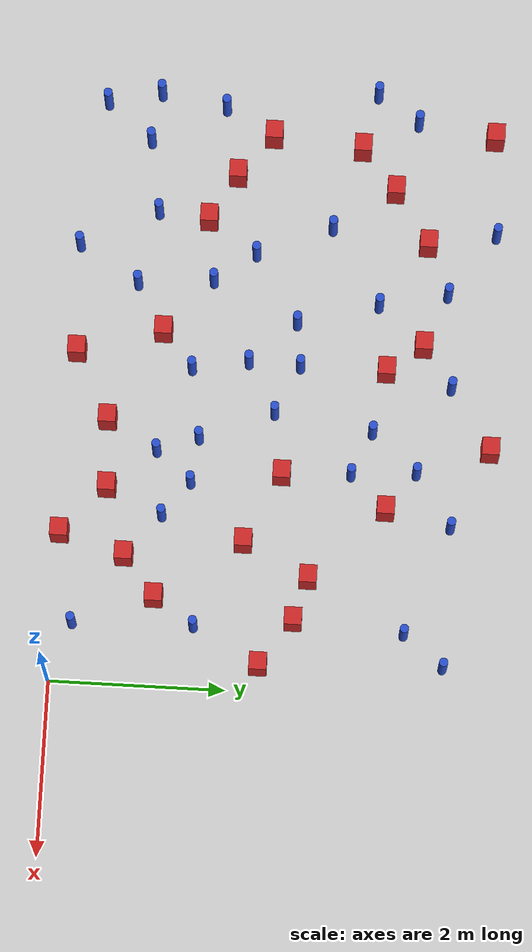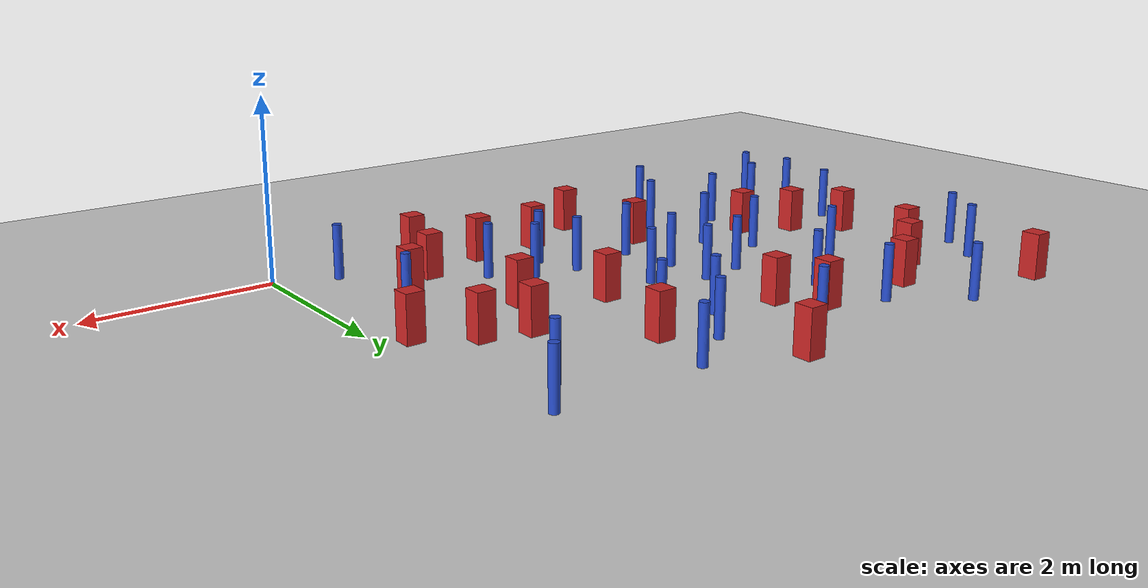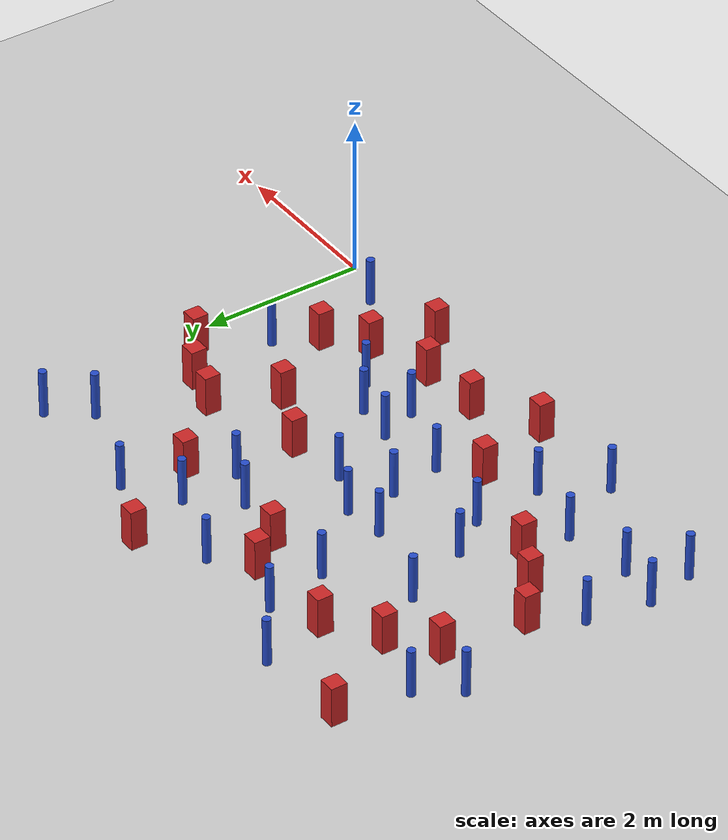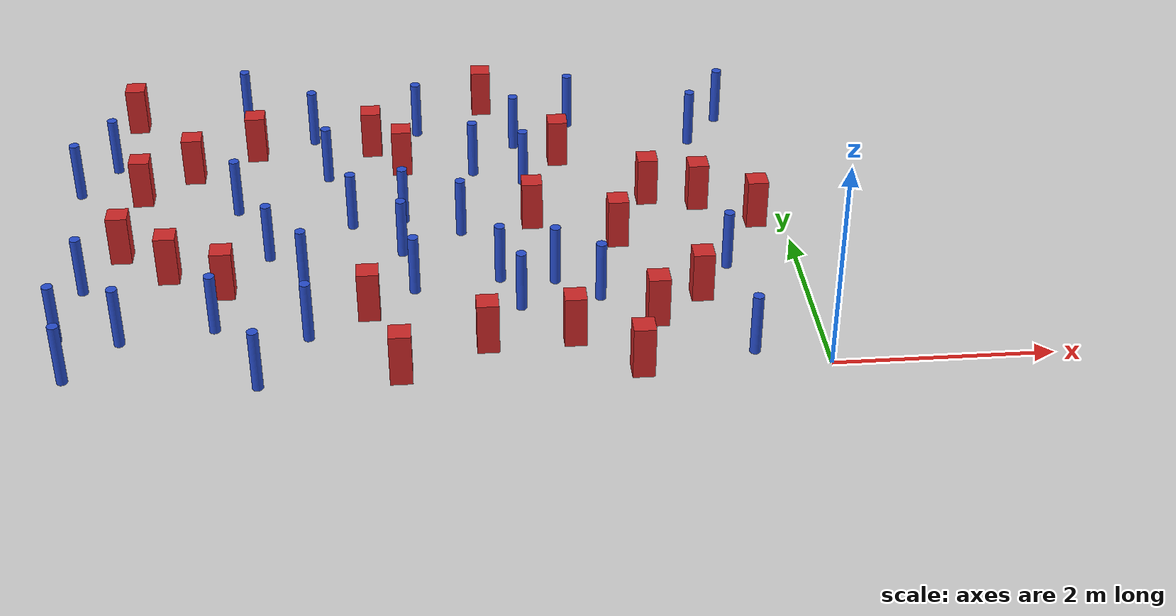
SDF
<sdf version="1.6">
 <world name="default">
  <model name="ground_plane">
   <static>1</static>
   <link name="link">
    <collision name="collision">
     <geometry><plane><normal>0 0 1</normal><size>100 100</size></plane></geometry>
     <surface><friction><ode><mu>100</mu><mu2>50</mu2></ode></friction></surface>
    </collision>
    <visual name="visual">
     <cast_shadows>0</cast_shadows>
     <geometry><plane><normal>0 0 1</normal><size>100 100</size></plane></geometry>
     <material>
      <ambient>1.0 1.0 1.0 1.0</ambient>
      <diffuse>0.8 0.8 0.8 1.0</diffuse>
      <specular>0.01 0.01 0.01 1.000000</specular>
     </material>
    </visual>
   </link>
  </model>
  <model name="square_post_obstacle1">
   <static>true</static>
   <pose>-2.88385890678 4.84033319816 -6.11067671241e-07 -5.50515727128e-06 -8.79689657224e-07 2.37013304536e-05</pose>
   <link name="link">
    <pose>0 0 0.25 0 -0 0</pose>
    <inertial>
     <mass>100</mass>
     <inertia>
      <ixx>0.166667</ixx>
      <ixy>0</ixy>
      <ixz>0</ixz>
      <iyy>0.166667</iyy>
      <iyz>0</iyz>
      <izz>0.166667</izz>
     </inertia>
    </inertial>
    <collision name="collision"><geometry><box><size>.2 .2 .5</size></box></geometry></collision>
    <visual name="visual">
     <geometry><box><size>.2 .2 .5</size></box></geometry>
     <material>
      <script><name>Gazebo/Red</name><uri>file://media/materials/scripts/gazebo.material</uri></script>
     </material>
    </visual>
   </link>
  </model>
  <model name="pole_obstacle4">
   <static>true</static>
   <pose>-0.367994864278 4.42728970482 -9.47619616065e-06 5.49618799737e-07 2.36310414065e-07 -1.55090534796e-07</pose>
   <link name="link">
    <pose>0 0 0.3 0 -0 0</pose>
    <inertial>
     <mass>1</mass>
     <inertia><ixx>0.145833</ixx><ixy>0</ixy><ixz>0</ixz><iyy>0.145833</iyy><iyz>0</iyz><izz>0.125</izz></inertia>
    </inertial>
    <collision name="collision">
     <geometry><cylinder><radius>0.05</radius><length>.6</length></cylinder></geometry>
    </collision>
    <visual name="visual">
     <geometry><cylinder><radius>0.05</radius><length>.6</length></cylinder></geometry>
     <material>
      <script><name>Gazebo/Blue</name><uri>file://media/materials/scripts/gazebo.material</uri></script>
     </material>
    </visual>
   </link>
  </model>
  <model name="pole_obstacle10">
   <static>true</static>
   <pose>-3.58671342312 4.36858105361 -9.47619616065e-06 5.49618799738e-07 2.3631041406e-07 -1.55090534801e-07</pose>
   <link name="link">
    <pose>0 0 0.3 0 -0 0</pose>
    <inertial>
     <mass>1</mass>
     <inertia><ixx>0.145833</ixx><ixy>0</ixy><ixz>0</ixz><iyy>0.145833</iyy><iyz>0</iyz><izz>0.125</izz></inertia>
    </inertial>
    <collision name="collision">
     <geometry><cylinder><radius>0.05</radius><length>.6</length></cylinder></geometry>
    </collision>
    <visual name="visual">
     <geometry><cylinder><radius>0.05</radius><length>.6</length></cylinder></geometry>
     <material>
      <script><name>Gazebo/Blue</name><uri>file://media/materials/scripts/gazebo.material</uri></script>
     </material>
    </visual>
   </link>
  </model>
  <model name="pole_obstacle12">
   <static>true</static>
   <pose>-2.85050988075 1.53689811707 -9.47619616065e-06 5.49618799737e-07 2.36310414072e-07 -1.55090534793e-07</pose>
   <link name="link">
    <pose>0 0 0.3 0 -0 0</pose>
    <inertial>
     <mass>1</mass>
     <inertia><ixx>0.145833</ixx><ixy>0</ixy><ixz>0</ixz><iyy>0.145833</iyy><iyz>0</iyz><izz>0.125</izz></inertia>
    </inertial>
    <collision name="collision">
     <geometry><cylinder><radius>0.05</radius><length>.6</length></cylinder></geometry>
    </collision>
    <visual name="visual">
     <geometry><cylinder><radius>0.05</radius><length>.6</length></cylinder></geometry>
     <material>
      <script><name>Gazebo/Blue</name><uri>file://media/materials/scripts/gazebo.material</uri></script>
     </material>
    </visual>
   </link>
  </model>
  <model name="square_post_obstacle8">
   <static>true</static>
   <pose>-0.286140557793 2.35264386809 -6.11067671241e-07 -5.50515727128e-06 -8.79689657224e-07 2.37013304536e-05</pose>
   <link name="link">
    <pose>0 0 0.25 0 -0 0</pose>
    <inertial>
     <mass>100</mass>
     <inertia>
      <ixx>0.166667</ixx>
      <ixy>0</ixy>
      <ixz>0</ixz>
      <iyy>0.166667</iyy>
      <iyz>0</iyz>
      <izz>0.166667</izz>
     </inertia>
    </inertial>
    <collision name="collision"><geometry><box><size>.2 .2 .5</size></box></geometry></collision>
    <visual name="visual">
     <geometry><box><size>.2 .2 .5</size></box></geometry>
     <material>
      <script><name>Gazebo/Red</name><uri>file://media/materials/scripts/gazebo.material</uri></script>
     </material>
    </visual>
   </link>
  </model>
  <model name="pole_obstacle16">
   <static>true</static>
   <pose>-3.02337573599 3.49883949913 -9.47619616065e-06 5.49618799737e-07 2.36310414051e-07 -1.55090534807e-07</pose>
   <link name="link">
    <pose>0 0 0.3 0 -0 0</pose>
    <inertial>
     <mass>1</mass>
     <inertia><ixx>0.145833</ixx><ixy>0</ixy><ixz>0</ixz><iyy>0.145833</iyy><iyz>0</iyz><izz>0.125</izz></inertia>
    </inertial>
    <collision name="collision">
     <geometry><cylinder><radius>0.05</radius><length>.6</length></cylinder></geometry>
    </collision>
    <visual name="visual">
     <geometry><cylinder><radius>0.05</radius><length>.6</length></cylinder></geometry>
     <material>
      <script><name>Gazebo/Blue</name><uri>file://media/materials/scripts/gazebo.material</uri></script>
     </material>
    </visual>
   </link>
  </model>
  <model name="pole_obstacle20">
   <static>true</static>
   <pose>-1.97383670014 4.43609214041 -9.47619616065e-06 5.49618799737e-07 2.36310414064e-07 -1.55090534797e-07</pose>
   <link name="link">
    <pose>0 0 0.3 0 -0 0</pose>
    <inertial>
     <mass>1</mass>
     <inertia><ixx>0.145833</ixx><ixy>0</ixy><ixz>0</ixz><iyy>0.145833</iyy><iyz>0</iyz><izz>0.125</izz></inertia>
    </inertial>
    <collision name="collision">
     <geometry><cylinder><radius>0.05</radius><length>.6</length></cylinder></geometry>
    </collision>
    <visual name="visual">
     <geometry><cylinder><radius>0.05</radius><length>.6</length></cylinder></geometry>
     <material>
      <script><name>Gazebo/Blue</name><uri>file://media/materials/scripts/gazebo.material</uri></script>
     </material>
    </visual>
   </link>
  </model>
  <model name="square_post_obstacle20">
   <static>true</static>
   <pose>-1.68341403801 0.027712718093 -6.11067671241e-07 -5.50515727128e-06 -8.79689657224e-07 2.37013304536e-05</pose>
   <link name="link">
    <pose>0 0 0.25 0 -0 0</pose>
    <inertial>
     <mass>100</mass>
     <inertia>
      <ixx>0.166667</ixx>
      <ixy>0</ixy>
      <ixz>0</ixz>
      <iyy>0.166667</iyy>
      <iyz>0</iyz>
      <izz>0.166667</izz>
     </inertia>
    </inertial>
    <collision name="collision"><geometry><box><size>.2 .2 .5</size></box></geometry></collision>
    <visual name="visual">
     <geometry><box><size>.2 .2 .5</size></box></geometry>
     <material>
      <script><name>Gazebo/Red</name><uri>file://media/materials/scripts/gazebo.material</uri></script>
     </material>
    </visual>
   </link>
  </model>
  <model name="square_post_obstacle21">
   <static>true</static>
   <pose>-1.68217082081 2.10644406995 -6.11067671241e-07 -5.50515727128e-06 -8.79689657224e-07 2.37013304536e-05</pose>
   <link name="link">
    <pose>0 0 0.25 0 -0 0</pose>
    <inertial>
     <mass>100</mass>
     <inertia>
      <ixx>0.166667</ixx>
      <ixy>0</ixy>
      <ixz>0</ixz>
      <iyy>0.166667</iyy>
      <iyz>0</iyz>
      <izz>0.166667</izz>
     </inertia>
    </inertial>
    <collision name="collision"><geometry><box><size>.2 .2 .5</size></box></geometry></collision>
    <visual name="visual">
     <geometry><box><size>.2 .2 .5</size></box></geometry>
     <material>
      <script><name>Gazebo/Red</name><uri>file://media/materials/scripts/gazebo.material</uri></script>
     </material>
    </visual>
   </link>
  </model>
  <model name="square_post_obstacle26">
   <static>true</static>
   <pose>-3.01715931005 0.487944426179 -6.11067671241e-07 -5.50515727128e-06 -8.79689657224e-07 2.37013304536e-05</pose>
   <link name="link">
    <pose>0 0 0.25 0 -0 0</pose>
    <inertial>
     <mass>100</mass>
     <inertia>
      <ixx>0.166667</ixx>
      <ixy>0</ixy>
      <ixz>0</ixz>
      <iyy>0.166667</iyy>
      <iyz>0</iyz>
      <izz>0.166667</izz>
     </inertia>
    </inertial>
    <collision name="collision"><geometry><box><size>.2 .2 .5</size></box></geometry></collision>
    <visual name="visual">
     <geometry><box><size>.2 .2 .5</size></box></geometry>
     <material>
      <script><name>Gazebo/Red</name><uri>file://media/materials/scripts/gazebo.material</uri></script>
     </material>
    </visual>
   </link>
  </model>
  <model name="pole_obstacle34">
   <static>true</static>
   <pose>-6.3060143701 0.784638575493 -9.47619616065e-06 5.49618799737e-07 2.36310414061e-07 -1.550905348e-07</pose>
   <link name="link">
    <pose>0 0 0.3 0 -0 0</pose>
    <inertial>
     <mass>1</mass>
     <inertia><ixx>0.145833</ixx><ixy>0</ixy><ixz>0</ixz><iyy>0.145833</iyy><iyz>0</iyz><izz>0.125</izz></inertia>
    </inertial>
    <collision name="collision">
     <geometry><cylinder><radius>0.05</radius><length>.6</length></cylinder></geometry>
    </collision>
    <visual name="visual">
     <geometry><cylinder><radius>0.05</radius><length>.6</length></cylinder></geometry>
     <material>
      <script><name>Gazebo/Blue</name><uri>file://media/materials/scripts/gazebo.material</uri></script>
     </material>
    </visual>
   </link>
  </model>
  <model name="pole_obstacle38">
   <static>true</static>
   <pose>-0.652024136691 0.229698904923 -9.47619616065e-06 5.49618799737e-07 2.36310414064e-07 -1.55090534797e-07</pose>
   <link name="link">
    <pose>0 0 0.3 0 -0 0</pose>
    <inertial>
     <mass>1</mass>
     <inertia><ixx>0.145833</ixx><ixy>0</ixy><ixz>0</ixz><iyy>0.145833</iyy><iyz>0</iyz><izz>0.125</izz></inertia>
    </inertial>
    <collision name="collision">
     <geometry><cylinder><radius>0.05</radius><length>.6</length></cylinder></geometry>
    </collision>
    <visual name="visual">
     <geometry><cylinder><radius>0.05</radius><length>.6</length></cylinder></geometry>
     <material>
      <script><name>Gazebo/Blue</name><uri>file://media/materials/scripts/gazebo.material</uri></script>
     </material>
    </visual>
   </link>
  </model>
  <model name="pole_obstacle47">
   <static>true</static>
   <pose>-4.6908072655 1.59676404725 -9.47619616065e-06 5.49618799738e-07 2.36310414071e-07 -1.55090534796e-07</pose>
   <link name="link">
    <pose>0 0 0.3 0 -0 0</pose>
    <inertial>
     <mass>1</mass>
     <inertia><ixx>0.145833</ixx><ixy>0</ixy><ixz>0</ixz><iyy>0.145833</iyy><iyz>0</iyz><izz>0.125</izz></inertia>
    </inertial>
    <collision name="collision">
     <geometry><cylinder><radius>0.05</radius><length>.6</length></cylinder></geometry>
    </collision>
    <visual name="visual">
     <geometry><cylinder><radius>0.05</radius><length>.6</length></cylinder></geometry>
     <material>
      <script><name>Gazebo/Blue</name><uri>file://media/materials/scripts/gazebo.material</uri></script>
     </material>
    </visual>
   </link>
  </model>
  <model name="pole_obstacle57">
   <static>true</static>
   <pose>-5.03291004681 2.06629025646 -9.47619616065e-06 5.49618799738e-07 2.36310414051e-07 -1.55090534805e-07</pose>
   <link name="link">
    <pose>0 0 0.3 0 -0 0</pose>
    <inertial>
     <mass>1</mass>
     <inertia><ixx>0.145833</ixx><ixy>0</ixy><ixz>0</ixz><iyy>0.145833</iyy><iyz>0</iyz><izz>0.125</izz></inertia>
    </inertial>
    <collision name="collision">
     <geometry><cylinder><radius>0.05</radius><length>.6</length></cylinder></geometry>
    </collision>
    <visual name="visual">
     <geometry><cylinder><radius>0.05</radius><length>.6</length></cylinder></geometry>
     <material>
      <script><name>Gazebo/Blue</name><uri>file://media/materials/scripts/gazebo.material</uri></script>
     </material>
    </visual>
   </link>
  </model>
  <model name="pole_obstacle58">
   <static>true</static>
   <pose>-4.50590614079 3.49682011623 -9.47619616065e-06 5.49618799738e-07 2.36310414051e-07 -1.55090534805e-07</pose>
   <link name="link">
    <pose>0 0 0.3 0 -0 0</pose>
    <inertial>
     <mass>1</mass>
     <inertia><ixx>0.145833</ixx><ixy>0</ixy><ixz>0</ixz><iyy>0.145833</iyy><iyz>0</iyz><izz>0.125</izz></inertia>
    </inertial>
    <collision name="collision">
     <geometry><cylinder><radius>0.05</radius><length>.6</length></cylinder></geometry>
    </collision>
    <visual name="visual">
     <geometry><cylinder><radius>0.05</radius><length>.6</length></cylinder></geometry>
     <material>
      <script><name>Gazebo/Blue</name><uri>file://media/materials/scripts/gazebo.material</uri></script>
     </material>
    </visual>
   </link>
  </model>
  <model name="pole_obstacle62">
   <static>true</static>
   <pose>-3.74406409634 2.6400258524 -9.47619616065e-06 5.49618799737e-07 2.36310414051e-07 -1.55090534807e-07</pose>
   <link name="link">
    <pose>0 0 0.3 0 -0 0</pose>
    <inertial>
     <mass>1</mass>
     <inertia><ixx>0.145833</ixx><ixy>0</ixy><ixz>0</ixz><iyy>0.145833</iyy><iyz>0</iyz><izz>0.125</izz></inertia>
    </inertial>
    <collision name="collision">
     <geometry><cylinder><radius>0.05</radius><length>.6</length></cylinder></geometry>
    </collision>
    <visual name="visual">
     <geometry><cylinder><radius>0.05</radius><length>.6</length></cylinder></geometry>
     <material>
      <script><name>Gazebo/Blue</name><uri>file://media/materials/scripts/gazebo.material</uri></script>
     </material>
    </visual>
   </link>
  </model>
  <model name="square_post_obstacle49">
   <static>true</static>
   <pose>-6.34716784516 3.21399703537 -6.11067671241e-07 -5.50515727128e-06 -8.79689657224e-07 2.37013304536e-05</pose>
   <link name="link">
    <pose>0 0 0.25 0 -0 0</pose>
    <inertial>
     <mass>100</mass>
     <inertia>
      <ixx>0.166667</ixx>
      <ixy>0</ixy>
      <ixz>0</ixz>
      <iyy>0.166667</iyy>
      <iyz>0</iyz>
      <izz>0.166667</izz>
     </inertia>
    </inertial>
    <collision name="collision"><geometry><box><size>.2 .2 .5</size></box></geometry></collision>
    <visual name="visual">
     <geometry><box><size>.2 .2 .5</size></box></geometry>
     <material>
      <script><name>Gazebo/Red</name><uri>file://media/materials/scripts/gazebo.material</uri></script>
     </material>
    </visual>
   </link>
  </model>
  <model name="pole_obstacle63">
   <static>true</static>
   <pose>-6.74240581567 1.62577142792 -9.47619616065e-06 5.49618799738e-07 2.36310414071e-07 -1.55090534796e-07</pose>
   <link name="link">
    <pose>0 0 0.3 0 -0 0</pose>
    <inertial>
     <mass>1</mass>
     <inertia><ixx>0.145833</ixx><ixy>0</ixy><ixz>0</ixz><iyy>0.145833</iyy><iyz>0</iyz><izz>0.125</izz></inertia>
    </inertial>
    <collision name="collision">
     <geometry><cylinder><radius>0.05</radius><length>.6</length></cylinder></geometry>
    </collision>
    <visual name="visual">
     <geometry><cylinder><radius>0.05</radius><length>.6</length></cylinder></geometry>
     <material>
      <script><name>Gazebo/Blue</name><uri>file://media/materials/scripts/gazebo.material</uri></script>
     </material>
    </visual>
   </link>
  </model>
  <model name="pole_obstacle64">
   <static>true</static>
   <pose>-2.52203149085 3.28133930335 -9.47619616065e-06 5.49618799737e-07 2.36310414051e-07 -1.55090534807e-07</pose>
   <link name="link">
    <pose>0 0 0.3 0 -0 0</pose>
    <inertial>
     <mass>1</mass>
     <inertia><ixx>0.145833</ixx><ixy>0</ixy><ixz>0</ixz><iyy>0.145833</iyy><iyz>0</iyz><izz>0.125</izz></inertia>
    </inertial>
    <collision name="collision">
     <geometry><cylinder><radius>0.05</radius><length>.6</length></cylinder></geometry>
    </collision>
    <visual name="visual">
     <geometry><cylinder><radius>0.05</radius><length>.6</length></cylinder></geometry>
     <material>
      <script><name>Gazebo/Blue</name><uri>file://media/materials/scripts/gazebo.material</uri></script>
     </material>
    </visual>
   </link>
  </model>
  <model name="square_post_obstacle59">
   <static>true</static>
   <pose>-5.2536640917 4.02046762901 -6.11067671241e-07 -5.50515727128e-06 -8.79689657224e-07 2.37013304536e-05</pose>
   <link name="link">
    <pose>0 0 0.25 0 -0 0</pose>
    <inertial>
     <mass>100</mass>
     <inertia>
      <ixx>0.166667</ixx>
      <ixy>0</ixy>
      <ixz>0</ixz>
      <iyy>0.166667</iyy>
      <iyz>0</iyz>
      <izz>0.166667</izz>
     </inertia>
    </inertial>
    <collision name="collision"><geometry><box><size>.2 .2 .5</size></box></geometry></collision>
    <visual name="visual">
     <geometry><box><size>.2 .2 .5</size></box></geometry>
     <material>
      <script><name>Gazebo/Red</name><uri>file://media/materials/scripts/gazebo.material</uri></script>
     </material>
    </visual>
   </link>
  </model>
  <model name="square_post_obstacle63">
   <static>true</static>
   <pose>-6.4423201926 2.18782174136 -6.11067671241e-07 -5.50515727128e-06 -8.79689657224e-07 2.37013304536e-05</pose>
   <link name="link">
    <pose>0 0 0.25 0 -0 0</pose>
    <inertial>
     <mass>100</mass>
     <inertia>
      <ixx>0.166667</ixx>
      <ixy>0</ixy>
      <ixz>0</ixz>
      <iyy>0.166667</iyy>
      <iyz>0</iyz>
      <izz>0.166667</izz>
     </inertia>
    </inertial>
    <collision name="collision"><geometry><box><size>.2 .2 .5</size></box></geometry></collision>
    <visual name="visual">
     <geometry><box><size>.2 .2 .5</size></box></geometry>
     <material>
      <script><name>Gazebo/Red</name><uri>file://media/materials/scripts/gazebo.material</uri></script>
     </material>
    </visual>
   </link>
  </model>
  <model name="pole_obstacle81">
   <static>true</static>
   <pose>-6.67856678362 3.84104070284 -9.47619616065e-06 5.49618799738e-07 2.36310414051e-07 -1.55090534805e-07</pose>
   <link name="link">
    <pose>0 0 0.3 0 -0 0</pose>
    <inertial>
     <mass>1</mass>
     <inertia><ixx>0.145833</ixx><ixy>0</ixy><ixz>0</ixz><iyy>0.145833</iyy><iyz>0</iyz><izz>0.125</izz></inertia>
    </inertial>
    <collision name="collision">
     <geometry><cylinder><radius>0.05</radius><length>.6</length></cylinder></geometry>
    </collision>
    <visual name="visual">
     <geometry><cylinder><radius>0.05</radius><length>.6</length></cylinder></geometry>
     <material>
      <script><name>Gazebo/Blue</name><uri>file://media/materials/scripts/gazebo.material</uri></script>
     </material>
    </visual>
   </link>
  </model>
  <model name="square_post_obstacle82">
   <static>true</static>
   <pose>-5.95767635334 1.80014717634 -6.11067671241e-07 -5.50515727128e-06 -8.79689657224e-07 2.37013304536e-05</pose>
   <link name="link">
    <pose>0 0 0.25 0 -0 0</pose>
    <inertial>
     <mass>100</mass>
     <inertia>
      <ixx>0.166667</ixx>
      <ixy>0</ixy>
      <ixz>0</ixz>
      <iyy>0.166667</iyy>
      <iyz>0</iyz>
      <izz>0.166667</izz>
     </inertia>
    </inertial>
    <collision name="collision"><geometry><box><size>.2 .2 .5</size></box></geometry></collision>
    <visual name="visual">
     <geometry><box><size>.2 .2 .5</size></box></geometry>
     <material>
      <script><name>Gazebo/Red</name><uri>file://media/materials/scripts/gazebo.material</uri></script>
     </material>
    </visual>
   </link>
  </model>
  <model name="pole_obstacle97">
   <static>true</static>
   <pose>-3.76232455672 2.05161000808 -9.47619616065e-06 5.49618799737e-07 2.36310414051e-07 -1.55090534807e-07</pose>
   <link name="link">
    <pose>0 0 0.3 0 -0 0</pose>
    <inertial>
     <mass>1</mass>
     <inertia><ixx>0.145833</ixx><ixy>0</ixy><ixz>0</ixz><iyy>0.145833</iyy><iyz>0</iyz><izz>0.125</izz></inertia>
    </inertial>
    <collision name="collision">
     <geometry><cylinder><radius>0.05</radius><length>.6</length></cylinder></geometry>
    </collision>
    <visual name="visual">
     <geometry><cylinder><radius>0.05</radius><length>.6</length></cylinder></geometry>
     <material>
      <script><name>Gazebo/Blue</name><uri>file://media/materials/scripts/gazebo.material</uri></script>
     </material>
    </visual>
   </link>
  </model>
  <model name="square_post_obstacle89">
   <static>true</static>
   <pose>-5.42043671603 1.50072297355 -6.11067671241e-07 -5.50515727128e-06 -8.79689657224e-07 2.37013304536e-05</pose>
   <link name="link">
    <pose>0 0 0.25 0 -0 0</pose>
    <inertial>
     <mass>100</mass>
     <inertia>
      <ixx>0.166667</ixx>
      <ixy>0</ixy>
      <ixz>0</ixz>
      <iyy>0.166667</iyy>
      <iyz>0</iyz>
      <izz>0.166667</izz>
     </inertia>
    </inertial>
    <collision name="collision"><geometry><box><size>.2 .2 .5</size></box></geometry></collision>
    <visual name="visual">
     <geometry><box><size>.2 .2 .5</size></box></geometry>
     <material>
      <script><name>Gazebo/Red</name><uri>file://media/materials/scripts/gazebo.material</uri></script>
     </material>
    </visual>
   </link>
  </model>
  <model name="square_post_obstacle93">
   <static>true</static>
   <pose>-0.816833278691 2.71796113942 -6.11067671241e-07 -5.50515727128e-06 -8.79689657224e-07 2.37013304536e-05</pose>
   <link name="link">
    <pose>0 0 0.25 0 -0 0</pose>
    <inertial>
     <mass>100</mass>
     <inertia>
      <ixx>0.166667</ixx>
      <ixy>0</ixy>
      <ixz>0</ixz>
      <iyy>0.166667</iyy>
      <iyz>0</iyz>
      <izz>0.166667</izz>
     </inertia>
    </inertial>
    <collision name="collision"><geometry><box><size>.2 .2 .5</size></box></geometry></collision>
    <visual name="visual">
     <geometry><box><size>.2 .2 .5</size></box></geometry>
     <material>
      <script><name>Gazebo/Red</name><uri>file://media/materials/scripts/gazebo.material</uri></script>
     </material>
    </visual>
   </link>
  </model>
  <model name="square_post_obstacle96">
   <static>true</static>
   <pose>-4.06165393853 4.02758912572 -6.11067671241e-07 -5.50515727128e-06 -8.79689657224e-07 2.37013304536e-05</pose>
   <link name="link">
    <pose>0 0 0.25 0 -0 0</pose>
    <inertial>
     <mass>100</mass>
     <inertia>
      <ixx>0.166667</ixx>
      <ixy>0</ixy>
      <ixz>0</ixz>
      <iyy>0.166667</iyy>
      <iyz>0</iyz>
      <izz>0.166667</izz>
     </inertia>
    </inertial>
    <collision name="collision"><geometry><box><size>.2 .2 .5</size></box></geometry></collision>
    <visual name="visual">
     <geometry><box><size>.2 .2 .5</size></box></geometry>
     <material>
      <script><name>Gazebo/Red</name><uri>file://media/materials/scripts/gazebo.material</uri></script>
     </material>
    </visual>
   </link>
  </model>
  <model name="pole_obstacle108">
   <static>true</static>
   <pose>-4.67070167482 4.27544593047 -9.47619616065e-06 5.49618799737e-07 2.36310414037e-07 -1.55090534814e-07</pose>
   <link name="link">
    <pose>0 0 0.3 0 -0 0</pose>
    <inertial>
     <mass>1</mass>
     <inertia><ixx>0.145833</ixx><ixy>0</ixy><ixz>0</ixz><iyy>0.145833</iyy><iyz>0</iyz><izz>0.125</izz></inertia>
    </inertial>
    <collision name="collision">
     <geometry><cylinder><radius>0.05</radius><length>.6</length></cylinder></geometry>
    </collision>
    <visual name="visual">
     <geometry><cylinder><radius>0.05</radius><length>.6</length></cylinder></geometry>
     <material>
      <script><name>Gazebo/Blue</name><uri>file://media/materials/scripts/gazebo.material</uri></script>
     </material>
    </visual>
   </link>
  </model>
  <model name="square_post_obstacle105">
   <static>true</static>
   <pose>-1.30841913835 2.85923927427 -6.11067671241e-07 -5.50515727128e-06 -8.79689657224e-07 2.37013304536e-05</pose>
   <link name="link">
    <pose>0 0 0.25 0 -0 0</pose>
    <inertial>
     <mass>100</mass>
     <inertia>
      <ixx>0.166667</ixx>
      <ixy>0</ixy>
      <ixz>0</ixz>
      <iyy>0.166667</iyy>
      <iyz>0</iyz>
      <izz>0.166667</izz>
     </inertia>
    </inertial>
    <collision name="collision"><geometry><box><size>.2 .2 .5</size></box></geometry></collision>
    <visual name="visual">
     <geometry><box><size>.2 .2 .5</size></box></geometry>
     <material>
      <script><name>Gazebo/Red</name><uri>file://media/materials/scripts/gazebo.material</uri></script>
     </material>
    </visual>
   </link>
  </model>
  <model name="pole_obstacle112">
   <static>true</static>
   <pose>-0.686637428402 1.59870085789 -9.47619616065e-06 5.49618799738e-07 2.36310414061e-07 -1.55090534801e-07</pose>
   <link name="link">
    <pose>0 0 0.3 0 -0 0</pose>
    <inertial>
     <mass>1</mass>
     <inertia><ixx>0.145833</ixx><ixy>0</ixy><ixz>0</ixz><iyy>0.145833</iyy><iyz>0</iyz><izz>0.125</izz></inertia>
    </inertial>
    <collision name="collision">
     <geometry><cylinder><radius>0.05</radius><length>.6</length></cylinder></geometry>
    </collision>
    <visual name="visual">
     <geometry><cylinder><radius>0.05</radius><length>.6</length></cylinder></geometry>
     <material>
      <script><name>Gazebo/Blue</name><uri>file://media/materials/scripts/gazebo.material</uri></script>
     </material>
    </visual>
   </link>
  </model>
  <model name="square_post_obstacle110">
   <static>true</static>
   <pose>-3.79338010489 0.090498949989 -6.11067671241e-07 -5.50515727128e-06 -8.79689657224e-07 2.37013304536e-05</pose>
   <link name="link">
    <pose>0 0 0.25 0 -0 0</pose>
    <inertial>
     <mass>100</mass>
     <inertia>
      <ixx>0.166667</ixx>
      <ixy>0</ixy>
      <ixz>0</ixz>
      <iyy>0.166667</iyy>
      <iyz>0</iyz>
      <izz>0.166667</izz>
     </inertia>
    </inertial>
    <collision name="collision"><geometry><box><size>.2 .2 .5</size></box></geometry></collision>
    <visual name="visual">
     <geometry><box><size>.2 .2 .5</size></box></geometry>
     <material>
      <script><name>Gazebo/Red</name><uri>file://media/materials/scripts/gazebo.material</uri></script>
     </material>
    </visual>
   </link>
  </model>
  <model name="pole_obstacle113">
   <static>true</static>
   <pose>-2.3345319469 1.47122484439 -9.47619616065e-06 5.49618799737e-07 2.36310414072e-07 -1.55090534793e-07</pose>
   <link name="link">
    <pose>0 0 0.3 0 -0 0</pose>
    <inertial>
     <mass>1</mass>
     <inertia><ixx>0.145833</ixx><ixy>0</ixy><ixz>0</ixz><iyy>0.145833</iyy><iyz>0</iyz><izz>0.125</izz></inertia>
    </inertial>
    <collision name="collision">
     <geometry><cylinder><radius>0.05</radius><length>.6</length></cylinder></geometry>
    </collision>
    <visual name="visual">
     <geometry><cylinder><radius>0.05</radius><length>.6</length></cylinder></geometry>
     <material>
      <script><name>Gazebo/Blue</name><uri>file://media/materials/scripts/gazebo.material</uri></script>
     </material>
    </visual>
   </link>
  </model>
  <model name="square_post_obstacle115">
   <static>true</static>
   <pose>-1.45688916484 0.769004276994 -6.11067671241e-07 -5.50515727128e-06 -8.79689657224e-07 2.37013304536e-05</pose>
   <link name="link">
    <pose>0 0 0.25 0 -0 0</pose>
    <inertial>
     <mass>100</mass>
     <inertia>
      <ixx>0.166667</ixx>
      <ixy>0</ixy>
      <ixz>0</ixz>
      <iyy>0.166667</iyy>
      <iyz>0</iyz>
      <izz>0.166667</izz>
     </inertia>
    </inertial>
    <collision name="collision"><geometry><box><size>.2 .2 .5</size></box></geometry></collision>
    <visual name="visual">
     <geometry><box><size>.2 .2 .5</size></box></geometry>
     <material>
      <script><name>Gazebo/Red</name><uri>file://media/materials/scripts/gazebo.material</uri></script>
     </material>
    </visual>
   </link>
  </model>
  <model name="square_post_obstacle121">
   <static>true</static>
   <pose>-6.55290964246 4.72502300175 -6.11067671241e-07 -5.50515727128e-06 -8.79689657224e-07 2.37013304536e-05</pose>
   <link name="link">
    <pose>0 0 0.25 0 -0 0</pose>
    <inertial>
     <mass>100</mass>
     <inertia>
      <ixx>0.166667</ixx>
      <ixy>0</ixy>
      <ixz>0</ixz>
      <iyy>0.166667</iyy>
      <iyz>0</iyz>
      <izz>0.166667</izz>
     </inertia>
    </inertial>
    <collision name="collision"><geometry><box><size>.2 .2 .5</size></box></geometry></collision>
    <visual name="visual">
     <geometry><box><size>.2 .2 .5</size></box></geometry>
     <material>
      <script><name>Gazebo/Red</name><uri>file://media/materials/scripts/gazebo.material</uri></script>
     </material>
    </visual>
   </link>
  </model>
  <model name="pole_obstacle123">
   <static>true</static>
   <pose>-0.724805556212 3.96947285813 -9.47619616065e-06 5.49618799737e-07 2.36310414065e-07 -1.55090534797e-07</pose>
   <link name="link">
    <pose>0 0 0.3 0 -0 0</pose>
    <inertial>
     <mass>1</mass>
     <inertia><ixx>0.145833</ixx><ixy>0</ixy><ixz>0</ixz><iyy>0.145833</iyy><iyz>0</iyz><izz>0.125</izz></inertia>
    </inertial>
    <collision name="collision">
     <geometry><cylinder><radius>0.05</radius><length>.6</length></cylinder></geometry>
    </collision>
    <visual name="visual">
     <geometry><cylinder><radius>0.05</radius><length>.6</length></cylinder></geometry>
     <material>
      <script><name>Gazebo/Blue</name><uri>file://media/materials/scripts/gazebo.material</uri></script>
     </material>
    </visual>
   </link>
  </model>
  <model name="pole_obstacle128">
   <static>true</static>
   <pose>-4.61771667288 0.734901825183 -9.47619616065e-06 5.49618799737e-07 2.36310414061e-07 -1.550905348e-07</pose>
   <link name="link">
    <pose>0 0 0.3 0 -0 0</pose>
    <inertial>
     <mass>1</mass>
     <inertia><ixx>0.145833</ixx><ixy>0</ixy><ixz>0</ixz><iyy>0.145833</iyy><iyz>0</iyz><izz>0.125</izz></inertia>
    </inertial>
    <collision name="collision">
     <geometry><cylinder><radius>0.05</radius><length>.6</length></cylinder></geometry>
    </collision>
    <visual name="visual">
     <geometry><cylinder><radius>0.05</radius><length>.6</length></cylinder></geometry>
     <material>
      <script><name>Gazebo/Blue</name><uri>file://media/materials/scripts/gazebo.material</uri></script>
     </material>
    </visual>
   </link>
  </model>
  <model name="pole_obstacle138">
   <static>true</static>
   <pose>-5.03437319114 0.0474424205242 -9.47619616065e-06 5.49618799738e-07 2.36310414073e-07 -1.55090534795e-07</pose>
   <link name="link">
    <pose>0 0 0.3 0 -0 0</pose>
    <inertial>
     <mass>1</mass>
     <inertia><ixx>0.145833</ixx><ixy>0</ixy><ixz>0</ixz><iyy>0.145833</iyy><iyz>0</iyz><izz>0.125</izz></inertia>
    </inertial>
    <collision name="collision">
     <geometry><cylinder><radius>0.05</radius><length>.6</length></cylinder></geometry>
    </collision>
    <visual name="visual">
     <geometry><cylinder><radius>0.05</radius><length>.6</length></cylinder></geometry>
     <material>
      <script><name>Gazebo/Blue</name><uri>file://media/materials/scripts/gazebo.material</uri></script>
     </material>
    </visual>
   </link>
  </model>
  <model name="pole_obstacle145">
   <static>true</static>
   <pose>-2.67924937792 1.06562294298 -9.47619616065e-06 5.49618799737e-07 2.36310414072e-07 -1.55090534793e-07</pose>
   <link name="link">
    <pose>0 0 0.3 0 -0 0</pose>
    <inertial>
     <mass>1</mass>
     <inertia><ixx>0.145833</ixx><ixy>0</ixy><ixz>0</ixz><iyy>0.145833</iyy><iyz>0</iyz><izz>0.125</izz></inertia>
    </inertial>
    <collision name="collision">
     <geometry><cylinder><radius>0.05</radius><length>.6</length></cylinder></geometry>
    </collision>
    <visual name="visual">
     <geometry><cylinder><radius>0.05</radius><length>.6</length></cylinder></geometry>
     <material>
      <script><name>Gazebo/Blue</name><uri>file://media/materials/scripts/gazebo.material</uri></script>
     </material>
    </visual>
   </link>
  </model>
  <model name="pole_obstacle157">
   <static>true</static>
   <pose>-4.24743596319 2.57576871604 -9.47619616065e-06 5.49618799738e-07 2.36310414051e-07 -1.55090534805e-07</pose>
   <link name="link">
    <pose>0 0 0.3 0 -0 0</pose>
    <inertial>
     <mass>1</mass>
     <inertia><ixx>0.145833</ixx><ixy>0</ixy><ixz>0</ixz><iyy>0.145833</iyy><iyz>0</iyz><izz>0.125</izz></inertia>
    </inertial>
    <collision name="collision">
     <geometry><cylinder><radius>0.05</radius><length>.6</length></cylinder></geometry>
    </collision>
    <visual name="visual">
     <geometry><cylinder><radius>0.05</radius><length>.6</length></cylinder></geometry>
     <material>
      <script><name>Gazebo/Blue</name><uri>file://media/materials/scripts/gazebo.material</uri></script>
     </material>
    </visual>
   </link>
  </model>
  <model name="square_post_obstacle169">
   <static>true</static>
   <pose>-4.07608495262 1.05862910519 -6.11067671241e-07 -5.50515727128e-06 -8.79689657224e-07 2.37013304536e-05</pose>
   <link name="link">
    <pose>0 0 0.25 0 -0 0</pose>
    <inertial>
     <mass>100</mass>
     <inertia>
      <ixx>0.166667</ixx>
      <ixy>0</ixy>
      <ixz>0</ixz>
      <iyy>0.166667</iyy>
      <iyz>0</iyz>
      <izz>0.166667</izz>
     </inertia>
    </inertial>
    <collision name="collision"><geometry><box><size>.2 .2 .5</size></box></geometry></collision>
    <visual name="visual">
     <geometry><box><size>.2 .2 .5</size></box></geometry>
     <material>
      <script><name>Gazebo/Red</name><uri>file://media/materials/scripts/gazebo.material</uri></script>
     </material>
    </visual>
   </link>
  </model>
  <model name="pole_obstacle173">
   <static>true</static>
   <pose>-3.65512611951 1.40897555652 -9.47619616065e-06 5.49618799737e-07 2.36310414072e-07 -1.55090534793e-07</pose>
   <link name="link">
    <pose>0 0 0.3 0 -0 0</pose>
    <inertial>
     <mass>1</mass>
     <inertia><ixx>0.145833</ixx><ixy>0</ixy><ixz>0</ixz><iyy>0.145833</iyy><iyz>0</iyz><izz>0.125</izz></inertia>
    </inertial>
    <collision name="collision">
     <geometry><cylinder><radius>0.05</radius><length>.6</length></cylinder></geometry>
    </collision>
    <visual name="visual">
     <geometry><cylinder><radius>0.05</radius><length>.6</length></cylinder></geometry>
     <material>
      <script><name>Gazebo/Blue</name><uri>file://media/materials/scripts/gazebo.material</uri></script>
     </material>
    </visual>
   </link>
  </model>
  <model name="pole_obstacle180">
   <static>true</static>
   <pose>-6.87664417184 0.872339363038 -9.47619616065e-06 5.49618799737e-07 2.36310414061e-07 -1.550905348e-07</pose>
   <link name="link">
    <pose>0 0 0.3 0 -0 0</pose>
    <inertial>
     <mass>1</mass>
     <inertia><ixx>0.145833</ixx><ixy>0</ixy><ixz>0</ixz><iyy>0.145833</iyy><iyz>0</iyz><izz>0.125</izz></inertia>
    </inertial>
    <collision name="collision">
     <geometry><cylinder><radius>0.05</radius><length>.6</length></cylinder></geometry>
    </collision>
    <visual name="visual">
     <geometry><cylinder><radius>0.05</radius><length>.6</length></cylinder></geometry>
     <material>
      <script><name>Gazebo/Blue</name><uri>file://media/materials/scripts/gazebo.material</uri></script>
     </material>
    </visual>
   </link>
  </model>
  <model name="square_post_obstacle180">
   <static>true</static>
   <pose>-2.1407020329 3.69200710717 -6.11067671241e-07 -5.50515727128e-06 -8.79689657224e-07 2.37013304536e-05</pose>
   <link name="link">
    <pose>0 0 0.25 0 -0 0</pose>
    <inertial>
     <mass>100</mass>
     <inertia>
      <ixx>0.166667</ixx>
      <ixy>0</ixy>
      <ixz>0</ixz>
      <iyy>0.166667</iyy>
      <iyz>0</iyz>
      <izz>0.166667</izz>
     </inertia>
    </inertial>
    <collision name="collision"><geometry><box><size>.2 .2 .5</size></box></geometry></collision>
    <visual name="visual">
     <geometry><box><size>.2 .2 .5</size></box></geometry>
     <material>
      <script><name>Gazebo/Red</name><uri>file://media/materials/scripts/gazebo.material</uri></script>
     </material>
    </visual>
   </link>
  </model>
  <model name="square_post_obstacle181">
   <static>true</static>
   <pose>-5.86733477037 3.61785094477 -6.11067671241e-07 -5.50515727128e-06 -8.79689657224e-07 2.37013304536e-05</pose>
   <link name="link">
    <pose>0 0 0.25 0 -0 0</pose>
    <inertial>
     <mass>100</mass>
     <inertia>
      <ixx>0.166667</ixx>
      <ixy>0</ixy>
      <ixz>0</ixz>
      <iyy>0.166667</iyy>
      <iyz>0</iyz>
      <izz>0.166667</izz>
     </inertia>
    </inertial>
    <collision name="collision"><geometry><box><size>.2 .2 .5</size></box></geometry></collision>
    <visual name="visual">
     <geometry><box><size>.2 .2 .5</size></box></geometry>
     <material>
      <script><name>Gazebo/Red</name><uri>file://media/materials/scripts/gazebo.material</uri></script>
     </material>
    </visual>
   </link>
  </model>
  <model name="pole_obstacle185">
   <static>true</static>
   <pose>-1.93677820441 1.16726307011 -9.47619616065e-06 5.49618799737e-07 2.36310414065e-07 -1.55090534798e-07</pose>
   <link name="link">
    <pose>0 0 0.3 0 -0 0</pose>
    <inertial>
     <mass>1</mass>
     <inertia><ixx>0.145833</ixx><ixy>0</ixy><ixz>0</ixz><iyy>0.145833</iyy><iyz>0</iyz><izz>0.125</izz></inertia>
    </inertial>
    <collision name="collision">
     <geometry><cylinder><radius>0.05</radius><length>.6</length></cylinder></geometry>
    </collision>
    <visual name="visual">
     <geometry><cylinder><radius>0.05</radius><length>.6</length></cylinder></geometry>
     <material>
      <script><name>Gazebo/Blue</name><uri>file://media/materials/scripts/gazebo.material</uri></script>
     </material>
    </visual>
   </link>
  </model>
  <model name="square_post_obstacle189">
   <static>true</static>
   <pose>-3.74928029341 3.62023662855 -6.11067671241e-07 -5.50515727128e-06 -8.79689657224e-07 2.37013304536e-05</pose>
   <link name="link">
    <pose>0 0 0.25 0 -0 0</pose>
    <inertial>
     <mass>100</mass>
     <inertia>
      <ixx>0.166667</ixx>
      <ixy>0</ixy>
      <ixz>0</ixz>
      <iyy>0.166667</iyy>
      <iyz>0</iyz>
      <izz>0.166667</izz>
     </inertia>
    </inertial>
    <collision name="collision"><geometry><box><size>.2 .2 .5</size></box></geometry></collision>
    <visual name="visual">
     <geometry><box><size>.2 .2 .5</size></box></geometry>
     <material>
      <script><name>Gazebo/Red</name><uri>file://media/materials/scripts/gazebo.material</uri></script>
     </material>
    </visual>
   </link>
  </model>
  <model name="square_post_obstacle197">
   <static>true</static>
   <pose>-2.48696575094 2.49671430203 -6.11067671241e-07 -5.50515727128e-06 -8.79689657224e-07 2.37013304536e-05</pose>
   <link name="link">
    <pose>0 0 0.25 0 -0 0</pose>
    <inertial>
     <mass>100</mass>
     <inertia>
      <ixx>0.166667</ixx>
      <ixy>0</ixy>
      <ixz>0</ixz>
      <iyy>0.166667</iyy>
      <iyz>0</iyz>
      <izz>0.166667</izz>
     </inertia>
    </inertial>
    <collision name="collision"><geometry><box><size>.2 .2 .5</size></box></geometry></collision>
    <visual name="visual">
     <geometry><box><size>.2 .2 .5</size></box></geometry>
     <material>
      <script><name>Gazebo/Red</name><uri>file://media/materials/scripts/gazebo.material</uri></script>
     </material>
    </visual>
   </link>
  </model>
  <model name="pole_obstacle196">
   <static>true</static>
   <pose>-5.39955141694 4.79610723939 -9.47619616065e-06 5.49618799737e-07 2.36310414037e-07 -1.55090534814e-07</pose>
   <link name="link">
    <pose>0 0 0.3 0 -0 0</pose>
    <inertial>
     <mass>1</mass>
     <inertia><ixx>0.145833</ixx><ixy>0</ixy><ixz>0</ixz><iyy>0.145833</iyy><iyz>0</iyz><izz>0.125</izz></inertia>
    </inertial>
    <collision name="collision">
     <geometry><cylinder><radius>0.05</radius><length>.6</length></cylinder></geometry>
    </collision>
    <visual name="visual">
     <geometry><cylinder><radius>0.05</radius><length>.6</length></cylinder></geometry>
     <material>
      <script><name>Gazebo/Blue</name><uri>file://media/materials/scripts/gazebo.material</uri></script>
     </material>
    </visual>
   </link>
  </model>
  <model name="pole_obstacle204">
   <static>true</static>
   <pose>-3.18700122007 2.37670131225 -9.47619616065e-06 5.49618799737e-07 2.36310414051e-07 -1.55090534807e-07</pose>
   <link name="link">
    <pose>0 0 0.3 0 -0 0</pose>
    <inertial>
     <mass>1</mass>
     <inertia><ixx>0.145833</ixx><ixy>0</ixy><ixz>0</ixz><iyy>0.145833</iyy><iyz>0</iyz><izz>0.125</izz></inertia>
    </inertial>
    <collision name="collision">
     <geometry><cylinder><radius>0.05</radius><length>.6</length></cylinder></geometry>
    </collision>
    <visual name="visual">
     <geometry><cylinder><radius>0.05</radius><length>.6</length></cylinder></geometry>
     <material>
      <script><name>Gazebo/Blue</name><uri>file://media/materials/scripts/gazebo.material</uri></script>
     </material>
    </visual>
   </link>
  </model>
  <model name="pole_obstacle207">
   <static>true</static>
   <pose>-5.38474756631 2.92118053185 -9.47619616065e-06 5.49618799738e-07 2.36310414051e-07 -1.55090534805e-07</pose>
   <link name="link">
    <pose>0 0 0.3 0 -0 0</pose>
    <inertial>
     <mass>1</mass>
     <inertia><ixx>0.145833</ixx><ixy>0</ixy><ixz>0</ixz><iyy>0.145833</iyy><iyz>0</iyz><izz>0.125</izz></inertia>
    </inertial>
    <collision name="collision">
     <geometry><cylinder><radius>0.05</radius><length>.6</length></cylinder></geometry>
    </collision>
    <visual name="visual">
     <geometry><cylinder><radius>0.05</radius><length>.6</length></cylinder></geometry>
     <material>
      <script><name>Gazebo/Blue</name><uri>file://media/materials/scripts/gazebo.material</uri></script>
     </material>
    </visual>
   </link>
  </model>
  <model name="square_post_obstacle207">
   <static>true</static>
   <pose>-2.23496914454 0.528479575509 -6.11067671241e-07 -5.50515727128e-06 -8.79689657224e-07 2.37013304536e-05</pose>
   <link name="link">
    <pose>0 0 0.25 0 -0 0</pose>
    <inertial>
     <mass>100</mass>
     <inertia>
      <ixx>0.166667</ixx>
      <ixy>0</ixy>
      <ixz>0</ixz>
      <iyy>0.166667</iyy>
      <iyz>0</iyz>
      <izz>0.166667</izz>
     </inertia>
    </inertial>
    <collision name="collision"><geometry><box><size>.2 .2 .5</size></box></geometry></collision>
    <visual name="visual">
     <geometry><box><size>.2 .2 .5</size></box></geometry>
     <material>
      <script><name>Gazebo/Red</name><uri>file://media/materials/scripts/gazebo.material</uri></script>
     </material>
    </visual>
   </link>
  </model>
  <model name="pole_obstacle211">
   <static>true</static>
   <pose>-2.57654011721 4.02179415301 -9.47619616065e-06 5.49618799737e-07 2.36310414061e-07 -1.55090534801e-07</pose>
   <link name="link">
    <pose>0 0 0.3 0 -0 0</pose>
    <inertial>
     <mass>1</mass>
     <inertia><ixx>0.145833</ixx><ixy>0</ixy><ixz>0</ixz><iyy>0.145833</iyy><iyz>0</iyz><izz>0.125</izz></inertia>
    </inertial>
    <collision name="collision">
     <geometry><cylinder><radius>0.05</radius><length>.6</length></cylinder></geometry>
    </collision>
    <visual name="visual">
     <geometry><cylinder><radius>0.05</radius><length>.6</length></cylinder></geometry>
     <material>
      <script><name>Gazebo/Blue</name><uri>file://media/materials/scripts/gazebo.material</uri></script>
     </material>
    </visual>
   </link>
  </model>
  <model name="square_post_obstacle214">
   <static>true</static>
   <pose>-0.999670814116 1.13551118472 -6.11067671241e-07 -5.50515727128e-06 -8.79689657224e-07 2.37013304536e-05</pose>
   <link name="link">
    <pose>0 0 0.25 0 -0 0</pose>
    <inertial>
     <mass>100</mass>
     <inertia>
      <ixx>0.166667</ixx>
      <ixy>0</ixy>
      <ixz>0</ixz>
      <iyy>0.166667</iyy>
      <iyz>0</iyz>
      <izz>0.166667</izz>
     </inertia>
    </inertial>
    <collision name="collision"><geometry><box><size>.2 .2 .5</size></box></geometry></collision>
    <visual name="visual">
     <geometry><box><size>.2 .2 .5</size></box></geometry>
     <material>
      <script><name>Gazebo/Red</name><uri>file://media/materials/scripts/gazebo.material</uri></script>
     </material>
    </visual>
   </link>
  </model>
  <model name="pole_obstacle218">
   <static>true</static>
   <pose>-6.99189999061 3.36093002078 -9.47619616065e-06 5.49618799737e-07 2.3631041406e-07 -1.550905348e-07</pose>
   <link name="link">
    <pose>0 0 0.3 0 -0 0</pose>
    <inertial>
     <mass>1</mass>
     <inertia><ixx>0.145833</ixx><ixy>0</ixy><ixz>0</ixz><iyy>0.145833</iyy><iyz>0</iyz><izz>0.125</izz></inertia>
    </inertial>
    <collision name="collision">
     <geometry><cylinder><radius>0.05</radius><length>.6</length></cylinder></geometry>
    </collision>
    <visual name="visual">
     <geometry><cylinder><radius>0.05</radius><length>.6</length></cylinder></geometry>
     <material>
      <script><name>Gazebo/Blue</name><uri>file://media/materials/scripts/gazebo.material</uri></script>
     </material>
    </visual>
   </link>
  </model>
  <model name="pole_obstacle219">
   <static>true</static>
   <pose>-5.46896999061 0.92317902078 -9.47619616065e-06 5.49618799737e-07 2.36310414061e-07 -1.550905348e-07</pose>
   <link name="link">
    <pose>0 0 0.3 0 -0 0</pose>
    <inertial>
     <mass>1</mass>
     <inertia><ixx>0.145833</ixx><ixy>0</ixy><ixz>0</ixz><iyy>0.145833</iyy><iyz>0</iyz><izz>0.125</izz></inertia>
    </inertial>
    <collision name="collision">
     <geometry><cylinder><radius>0.05</radius><length>.6</length></cylinder></geometry>
    </collision>
    <visual name="visual">
     <geometry><cylinder><radius>0.05</radius><length>.6</length></cylinder></geometry>
     <material>
      <script><name>Gazebo/Blue</name><uri>file://media/materials/scripts/gazebo.material</uri></script>
     </material>
    </visual>
   </link>
  </model>
  <model name="pole_obstacle220">
   <static>true</static>
   <pose>-6.73704999061 0.26300202078 -9.47619616065e-06 5.49618799737e-07 2.36310414064e-07 -1.55090534798e-07</pose>
   <link name="link">
    <pose>0 0 0.3 0 -0 0</pose>
    <inertial>
     <mass>1</mass>
     <inertia><ixx>0.145833</ixx><ixy>0</ixy><ixz>0</ixz><iyy>0.145833</iyy><iyz>0</iyz><izz>0.125</izz></inertia>
    </inertial>
    <collision name="collision">
     <geometry><cylinder><radius>0.05</radius><length>.6</length></cylinder></geometry>
    </collision>
    <visual name="visual">
     <geometry><cylinder><radius>0.05</radius><length>.6</length></cylinder></geometry>
     <material>
      <script><name>Gazebo/Blue</name><uri>file://media/materials/scripts/gazebo.material</uri></script>
     </material>
    </visual>
   </link>
  </model>
 </world>
</sdf>
